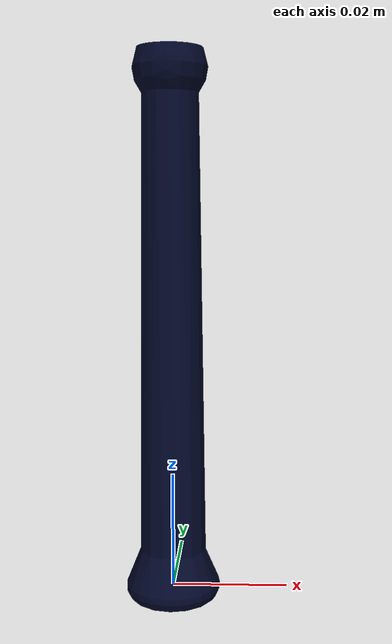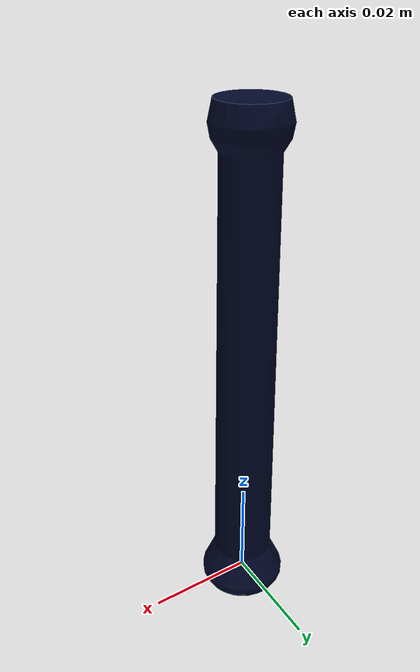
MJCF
<mujoco model="adjustable_tool_arm">
  <default>
    <default class="visual">
      <geom group="2" type="mesh" contype="0" conaffinity="0"/>
    </default>
    <default class="collision">
      <geom group="3" type="mesh"/>
    </default>
  </default>
  <asset>
    <material name="mat0" specular="0.05534" shininess="0.25" rgba="0 0.02192 0.15233 1.0"/>
    <mesh file="adjustable_tool_arm.obj"/>
  </asset>
  <worldbody>
    <body name="adjustable_tool_arm">
      <geom material="mat0" mesh="adjustable_tool_arm" class="visual"/>
      <geom mesh="adjustable_tool_arm" class="collision"/>
    </body>
  </worldbody>
</mujoco>
